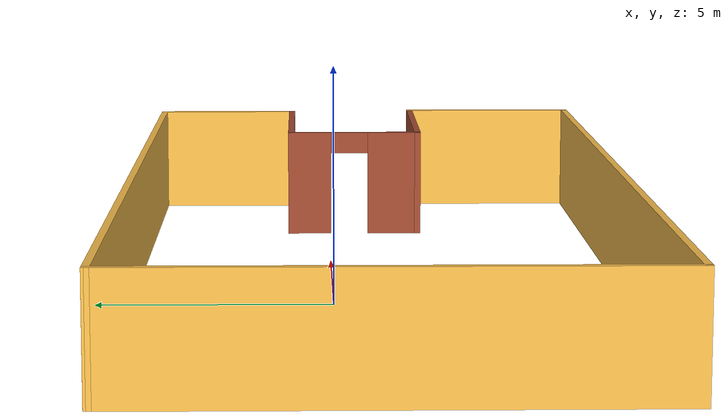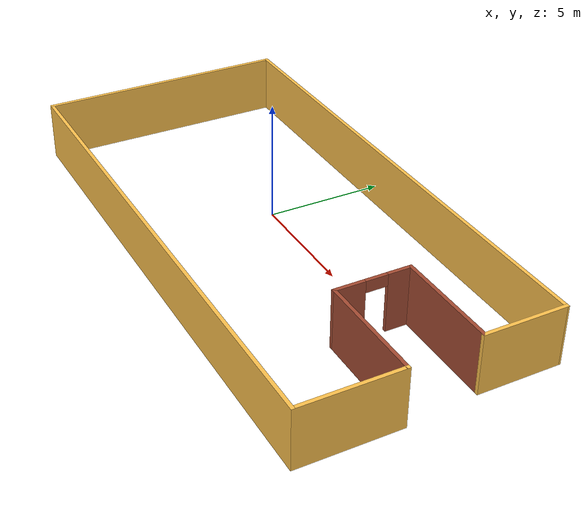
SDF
<?xml version='1.0'?>
<sdf version='1.6'>
  <model name='mybuilding'>
    <pose frame=''>2.21796 -0.974021 0 0 -0 0</pose>
    <link name='Wall_10'>
      <collision name='Wall_10_Collision'>
        <geometry>
          <box>
            <size>22.5 0.15 2.5</size>
          </box>
        </geometry>
        <pose frame=''>0 0 1.25 0 -0 0</pose>
      </collision>
      <visual name='Wall_10_Visual'>
        <pose frame=''>0 0 1.25 0 -0 0</pose>
        <geometry>
          <box>
            <size>22.5 0.15 2.5</size>
          </box>
        </geometry>
        <material>
          <script>
            <uri>file://media/materials/scripts/gazebo.material</uri>
            <name>Gazebo/Grey</name>
          </script>
          <ambient>1 0.764706 0.305882 1</ambient>
        </material>
        <meta>
          <layer>0</layer>
        </meta>
      </visual>
      <pose frame=''>8.7e-05 -5.30009 0 0 -0 0</pose>
    </link>
    <link name='Wall_11'>
      <collision name='Wall_11_Collision'>
        <geometry>
          <box>
            <size>4.25 0.15 2.5</size>
          </box>
        </geometry>
        <pose frame=''>0 0 1.25 0 -0 0</pose>
      </collision>
      <visual name='Wall_11_Visual'>
        <pose frame=''>0 0 1.25 0 -0 0</pose>
        <geometry>
          <box>
            <size>4.25 0.15 2.5</size>
          </box>
        </geometry>
        <material>
          <script>
            <uri>file://media/materials/scripts/gazebo.material</uri>
            <name>Gazebo/Grey</name>
          </script>
          <ambient>1 0.764706 0.305882 1</ambient>
        </material>
        <meta>
          <layer>0</layer>
        </meta>
      </visual>
      <pose frame=''>11.1751 -3.25008 0 0 -0 1.5708</pose>
    </link>
    <link name='Wall_12'>
      <collision name='Wall_12_Collision'>
        <geometry>
          <box>
            <size>4.75 0.15 2.5</size>
          </box>
        </geometry>
        <pose frame=''>0 0 1.25 0 -0 0</pose>
      </collision>
      <visual name='Wall_12_Visual'>
        <pose frame=''>0 0 1.25 0 -0 0</pose>
        <geometry>
          <box>
            <size>4.75 0.15 2.5</size>
          </box>
        </geometry>
        <material>
          <script>
            <uri>file://media/materials/scripts/gazebo.material</uri>
            <name>Gazebo/Bricks</name>
          </script>
          <ambient>1 0.764706 0.305882 1</ambient>
        </material>
        <meta>
          <layer>0</layer>
        </meta>
      </visual>
      <pose frame=''>8.87509 -1.20008 0 0 -0 3.14159</pose>
    </link>
    <link name='Wall_13'>
      <pose frame=''>6.57509 0.349915 0 0 -0 1.5708</pose>
      <visual name='Wall_13_Visual_0'>
        <pose frame=''>-0.975023 0 1.25 0 -0 0</pose>
        <geometry>
          <box>
            <size>1.29995 0.15 2.5</size>
          </box>
        </geometry>
        <material>
          <script>
            <uri>file://media/materials/scripts/gazebo.material</uri>
            <name>Gazebo/Bricks</name>
          </script>
          <ambient>1 0.764706 0.305882 1</ambient>
        </material>
        <meta>
          <layer>0</layer>
        </meta>
      </visual>
      <collision name='Wall_13_Collision_0'>
        <geometry>
          <box>
            <size>1.29995 0.15 2.5</size>
          </box>
        </geometry>
        <pose frame=''>-0.975023 0 1.25 0 -0 0</pose>
      </collision>
      <visual name='Wall_13_Visual_1'>
        <pose frame=''>1.09998 0 1.25 0 -0 0</pose>
        <geometry>
          <box>
            <size>1.05004 0.15 2.5</size>
          </box>
        </geometry>
        <material>
          <script>
            <uri>file://media/materials/scripts/gazebo.material</uri>
            <name>Gazebo/Bricks</name>
          </script>
          <ambient>1 0.764706 0.305882 1</ambient>
        </material>
        <meta>
          <layer>0</layer>
        </meta>
      </visual>
      <collision name='Wall_13_Collision_1'>
        <geometry>
          <box>
            <size>1.05004 0.15 2.5</size>
          </box>
        </geometry>
        <pose frame=''>1.09998 0 1.25 0 -0 0</pose>
      </collision>
      <visual name='Wall_13_Visual_2'>
        <pose frame=''>0.124955 0 2.25 0 -0 0</pose>
        <geometry>
          <box>
            <size>0.9 0.15 0.5</size>
          </box>
        </geometry>
        <material>
          <script>
            <uri>file://media/materials/scripts/gazebo.material</uri>
            <name>Gazebo/Bricks</name>
          </script>
          <ambient>1 0.764706 0.305882 1</ambient>
        </material>
        <meta>
          <layer>0</layer>
        </meta>
      </visual>
      <collision name='Wall_13_Collision_2'>
        <geometry>
          <box>
            <size>0.9 0.15 0.5</size>
          </box>
        </geometry>
        <pose frame=''>0.124955 0 2.25 0 -0 0</pose>
      </collision>
    </link>
    <link name='Wall_14'>
      <collision name='Wall_14_Collision'>
        <geometry>
          <box>
            <size>4.5 0.15 2.5</size>
          </box>
        </geometry>
        <pose frame=''>0 0 1.25 0 -0 0</pose>
      </collision>
      <visual name='Wall_14_Visual'>
        <pose frame=''>0 0 1.25 0 -0 0</pose>
        <geometry>
          <box>
            <size>4.5 0.15 2.5</size>
          </box>
        </geometry>
        <material>
          <script>
            <uri>file://media/materials/scripts/gazebo.material</uri>
            <name>Gazebo/Bricks</name>
          </script>
          <ambient>1 0.764706 0.305882 1</ambient>
        </material>
        <meta>
          <layer>0</layer>
        </meta>
      </visual>
      <pose frame=''>8.75009 1.89992 0 0 -0 0</pose>
    </link>
    <link name='Wall_15'>
      <collision name='Wall_15_Collision'>
        <geometry>
          <box>
            <size>3.5 0.15 2.5</size>
          </box>
        </geometry>
        <pose frame=''>0 0 1.25 0 -0 0</pose>
      </collision>
      <visual name='Wall_15_Visual'>
        <pose frame=''>0 0 1.25 0 -0 0</pose>
        <geometry>
          <box>
            <size>3.5 0.15 2.5</size>
          </box>
        </geometry>
        <material>
          <script>
            <uri>file://media/materials/scripts/gazebo.material</uri>
            <name>Gazebo/Grey</name>
          </script>
          <ambient>1 0.764706 0.305882 1</ambient>
        </material>
        <meta>
          <layer>0</layer>
        </meta>
      </visual>
      <pose frame=''>10.9251 3.57491 0 0 -0 1.5708</pose>
    </link>
    <link name='Wall_16'>
      <collision name='Wall_16_Collision'>
        <geometry>
          <box>
            <size>22.2501 0.15 2.5</size>
          </box>
        </geometry>
        <pose frame=''>0 0 1.25 0 -0 0</pose>
      </collision>
      <visual name='Wall_16_Visual'>
        <pose frame=''>0 0 1.25 0 -0 0</pose>
        <geometry>
          <box>
            <size>22.2501 0.15 2.5</size>
          </box>
        </geometry>
        <material>
          <script>
            <uri>file://media/materials/scripts/gazebo.material</uri>
            <name>Gazebo/Grey</name>
          </script>
          <ambient>1 0.764706 0.305882 1</ambient>
        </material>
        <meta>
          <layer>0</layer>
        </meta>
      </visual>
      <pose frame=''>-0.124913 5.27492 0 0 -0 3.13933</pose>
    </link>
    <link name='Wall_9'>
      <collision name='Wall_9_Collision'>
        <geometry>
          <box>
            <size>10.75 0.15 2.5</size>
          </box>
        </geometry>
        <pose frame=''>0 0 1.25 0 -0 0</pose>
      </collision>
      <visual name='Wall_9_Visual'>
        <pose frame=''>0 0 1.25 0 -0 0</pose>
        <geometry>
          <box>
            <size>10.75 0.15 2.5</size>
          </box>
        </geometry>
        <material>
          <script>
            <uri>file://media/materials/scripts/gazebo.material</uri>
            <name>Gazebo/Grey</name>
          </script>
          <ambient>1 0.764706 0.305882 1</ambient>
        </material>
        <meta>
          <layer>0</layer>
        </meta>
      </visual>
      <pose frame=''>-11.1749 -8.5e-05 0 0 0 -1.5708</pose>
    </link>
    <static>1</static>
  </model>
</sdf>
